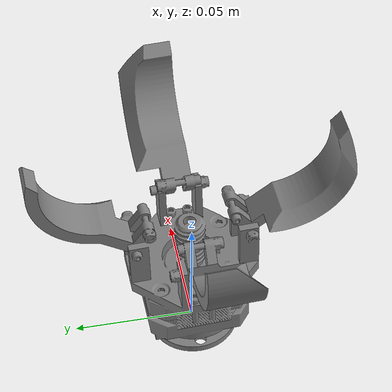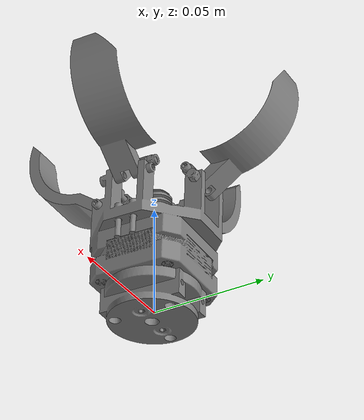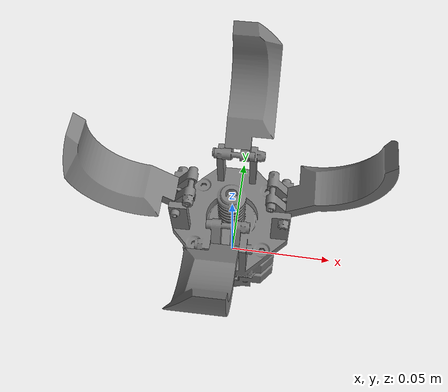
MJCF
<mujoco model="v5_gripper">
  <visual>
    <headlight ambient="0 0 0" diffuse="1 1 1" specular="1 1 1"/>
    <quality shadowsize="8192"/>
  </visual>
  <compiler angle="radian" meshdir="../meshes/" autolimits="true"/>
  <option integrator="RK4" timestep="0.00025">
    <flag gravity="disable"/>
  </option>
  <size njmax="500" nconmax="100"/>
  <default/>
  <asset>
    <mesh name="gripper_base" file="gripper_base.stl" scale="0.01 0.01 0.01"/>
    <mesh name="finger_1_1" file="finger_1.stl" scale="0.01 0.01 0.01"/>
    <mesh name="finger_4_1" file="finger_4.stl" scale="0.01 0.01 0.01"/>
    <mesh name="finger_3_1" file="finger_3.stl" scale="0.01 0.01 0.01"/>
    <mesh name="finger_2_1" file="finger_2.stl" scale="0.01 0.01 0.01"/>
  </asset>
  <worldbody>
    <body name="gripper_base">
      <geom type="mesh" contype="0" conaffinity="0" group="1" density="0" mesh="gripper_base"/>
      <geom type="mesh" mesh="gripper_base"/>
      <body name="finger_1" pos="0.005959 -0.022452 0.054853">
        <inertial pos="-0.00864261 -0.0223486 0.0179735" quat="0.653281 0.270598 -0.270598 0.653281" mass="0.00589988" diaginertia="1.33333e-06 1.33333e-06 1.33333e-06"/>
        <joint name="gripper_joint_1" armature="0.01" pos="0 0 0" axis="0.999727 0.017623 0.01534" range="-1 0"/>
        <geom pos="-0.005959 0.022452 -0.054853" type="mesh" contype="0" conaffinity="0" group="1" density="0" mesh="finger_1_1"/>
        <geom pos="-0.005959 0.022452 -0.054853" type="mesh" mesh="finger_1_1"/>
      </body>
      <body name="finger_4" pos="0.022822 0.00746 0.054188">
        <inertial pos="0.0225221 -0.00220606 0.017841" quat="0.92388 0 0.382683 0" mass="0.00589986" diaginertia="1.33333e-06 1.33333e-06 1.33333e-06"/>
        <joint name="gripper_joint_2" armature="0.01" pos="0 0 0" axis="-0.017134 0.999359 -0.031436" range="-1 0"/>
        <geom pos="-0.022822 -0.00746 -0.054188" type="mesh" contype="0" conaffinity="0" group="1" density="0" mesh="finger_4_1"/>
        <geom pos="-0.022822 -0.00746 -0.054188" type="mesh" mesh="finger_4_1"/>
      </body>
      <body name="finger_3" pos="-0.007093 0.024302 0.053188">
        <inertial pos="0.00809087 0.0234324 0.0168113" quat="0.653281 -0.270598 0.270598 0.653281" mass="0.00589994" diaginertia="1.33333e-06 1.33333e-06 1.33333e-06"/>
        <joint name="gripper_joint_3" armature="0.01" pos="0 0 0" axis="-0.999727 -0.017623 -0.01534" range="-1 0"/>
        <geom pos="0.007093 -0.024302 -0.053188" type="mesh" contype="0" conaffinity="0" group="1" density="0" mesh="finger_3_1"/>
        <geom pos="0.007093 -0.024302 -0.053188" type="mesh" mesh="finger_3_1"/>
      </body>
      <body name="finger_2" pos="-0.023955 -0.005611 0.053852">
        <inertial pos="-0.0230751 0.00329087 0.0169449" quat="0 0.92388 0 0.382683" mass="0.00589981" diaginertia="1.33333e-06 1.33333e-06 1.33333e-06"/>
        <joint name="gripper_joint_4" armature="0.01" pos="0 0 0" axis="0.017134 -0.999359 0.031436" range="-1 0"/>
        <geom pos="0.023955 0.005611 -0.053852" type="mesh" contype="0" conaffinity="0" group="1" density="0" mesh="finger_2_1"/>
        <geom pos="0.023955 0.005611 -0.053852" type="mesh" mesh="finger_2_1"/>
      </body>
    </body>
  </worldbody>

  <contact>
    <exclude name="gj1_contact" body1="gripper_base" body2="finger_1"/>
    <exclude name="gj2_contact" body1="gripper_base" body2="finger_2"/>
    <exclude name="gj3_contact" body1="gripper_base" body2="finger_3"/>
    <exclude name="gj4_contact" body1="gripper_base" body2="finger_4"/>
  </contact>

  <actuator>
    <velocity name="GJ1" joint="gripper_joint_1" kv="3" gear="6 0 0 0 0 0"/>
    <velocity name="GJ2" joint="gripper_joint_2" kv="3" gear="6 0 0 0 0 0"/>
    <velocity name="GJ3" joint="gripper_joint_3" kv="3" gear="6 0 0 0 0 0"/>
    <velocity name="GJ4" joint="gripper_joint_4" kv="3" gear="6 0 0 0 0 0"/>
  </actuator>
</mujoco>
